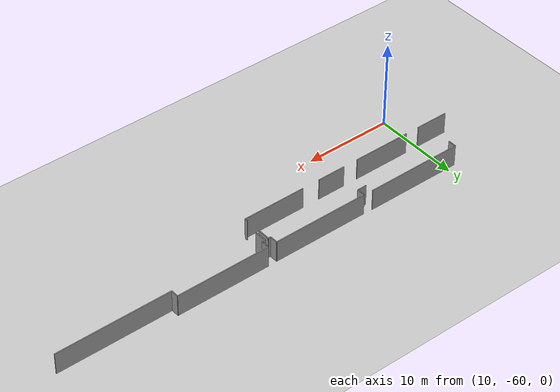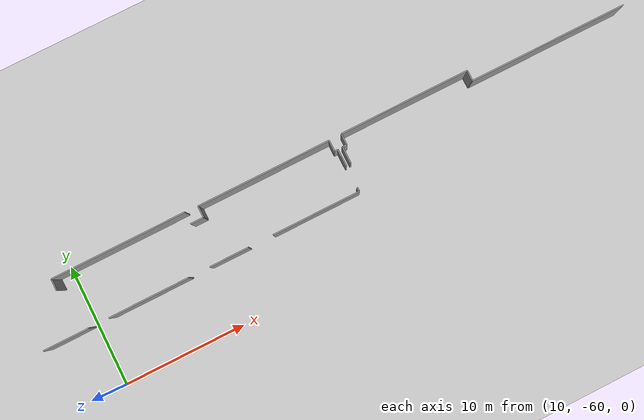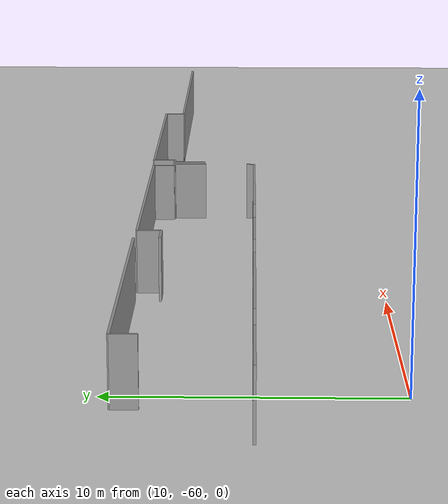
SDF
<sdf version="1.6">
 <world name="default">
  <model name="ground_plane">
   <static>1</static>
   <link name="link">
    <collision name="collision">
     <geometry><plane><normal>0 0 1</normal><size>100 100</size></plane></geometry>
     <surface><friction><ode><mu>100</mu><mu2>50</mu2></ode></friction></surface>
    </collision>
    <visual name="visual">
     <cast_shadows>0</cast_shadows>
     <geometry><plane><normal>0 0 1</normal><size>100 100</size></plane></geometry>
     <material>
      <script><uri>file://media/materials/scripts/gazebo.material</uri><name>Gazebo/Grey</name></script>
     </material>
    </visual>
   </link>
  </model>
  <model name="50036893">
   <static>1</static>
   <link name="Wall_163">
    <collision name="Wall_163_Collision">
     <geometry><box><size>0.924947849629 0.1 2.5</size></box></geometry>
     <pose>0.462473924815 0 1.25 0 0 0</pose>
    </collision>
    <visual name="Wall_163_Visual">
     <pose>0.462473924815 0 1.25 0 0 0</pose>
     <geometry><box><size>0.924947849629 0.1 2.5</size></box></geometry>
     <material>
      <script><uri>file://media/materials/scripts/gazebo.material</uri><name>Gazebo/Grey</name></script>
      <ambient>1 1 1 1</ambient>
     </material>
    </visual>
    <pose>83.1775902407 -119.300772903 0 0 0 1.57079632679</pose>
   </link>
   <link name="Wall_164">
    <collision name="Wall_164_Collision">
     <geometry><box><size>11.0729978379 0.1 2.5</size></box></geometry>
     <pose>5.53649891895 0 1.25 0 0 0</pose>
    </collision>
    <visual name="Wall_164_Visual">
     <pose>5.53649891895 0 1.25 0 0 0</pose>
     <geometry><box><size>11.0729978379 0.1 2.5</size></box></geometry>
     <material>
      <script><uri>file://media/materials/scripts/gazebo.material</uri><name>Gazebo/Grey</name></script>
      <ambient>1 1 1 1</ambient>
     </material>
    </visual>
    <pose>83.1775902407 -118.375825054 0 0 0 0.0</pose>
   </link>
   <link name="Wall_166">
    <collision name="Wall_166_Collision">
     <geometry><box><size>1.07788000025 0.1 2.5</size></box></geometry>
     <pose>0.538940000127 0 1.25 0 0 0</pose>
    </collision>
    <visual name="Wall_166_Visual">
     <pose>0.538940000127 0 1.25 0 0 0</pose>
     <geometry><box><size>1.07788000025 0.1 2.5</size></box></geometry>
     <material>
      <script><uri>file://media/materials/scripts/gazebo.material</uri><name>Gazebo/Grey</name></script>
      <ambient>1 1 1 1</ambient>
     </material>
    </visual>
    <pose>94.2505880786 -119.363416753 0 0 0 0.0</pose>
   </link>
   <link name="Wall_167">
    <collision name="Wall_167_Collision">
     <geometry><box><size>0.936867934338 0.1 2.5</size></box></geometry>
     <pose>0.468433967169 0 1.25 0 0 0</pose>
    </collision>
    <visual name="Wall_167_Visual">
     <pose>0.468433967169 0 1.25 0 0 0</pose>
     <geometry><box><size>0.936867934338 0.1 2.5</size></box></geometry>
     <material>
      <script><uri>file://media/materials/scripts/gazebo.material</uri><name>Gazebo/Grey</name></script>
      <ambient>1 1 1 1</ambient>
     </material>
    </visual>
    <pose>95.3284680789 -119.363416753 0 0 0 1.57079632679</pose>
   </link>
   <link name="Wall_168">
    <collision name="Wall_168_Collision">
     <geometry><box><size>11.0273464497 0.1 2.5</size></box></geometry>
     <pose>5.51367322483 0 1.25 0 0 0</pose>
    </collision>
    <visual name="Wall_168_Visual">
     <pose>5.51367322483 0 1.25 0 0 0</pose>
     <geometry><box><size>11.0273464497 0.1 2.5</size></box></geometry>
     <material>
      <script><uri>file://media/materials/scripts/gazebo.material</uri><name>Gazebo/Grey</name></script>
      <ambient>1 1 1 1</ambient>
     </material>
    </visual>
    <pose>95.3284680789 -118.426548818 0 0 0 0.0</pose>
   </link>
   <link name="Wall_169">
    <collision name="Wall_169_Collision">
     <geometry><box><size>0.912013289626 0.1 2.5</size></box></geometry>
     <pose>0.456006644813 0 1.25 0 0 0</pose>
    </collision>
    <visual name="Wall_169_Visual">
     <pose>0.456006644813 0 1.25 0 0 0</pose>
     <geometry><box><size>0.912013289626 0.1 2.5</size></box></geometry>
     <material>
      <script><uri>file://media/materials/scripts/gazebo.material</uri><name>Gazebo/Grey</name></script>
      <ambient>1 1 1 1</ambient>
     </material>
    </visual>
    <pose>106.355814529 -118.426548818 0 0 0 -1.57079632679</pose>
   </link>
   <link name="Wall_170">
    <collision name="Wall_170_Collision">
     <geometry><box><size>0.289125458892 0.1 2.5</size></box></geometry>
     <pose>0.144562729446 0 1.25 0 0 0</pose>
    </collision>
    <visual name="Wall_170_Visual">
     <pose>0.144562729446 0 1.25 0 0 0</pose>
     <geometry><box><size>0.289125458892 0.1 2.5</size></box></geometry>
     <material>
      <script><uri>file://media/materials/scripts/gazebo.material</uri><name>Gazebo/Grey</name></script>
      <ambient>1 1 1 1</ambient>
     </material>
    </visual>
    <pose>106.355814529 -119.338562108 0 0 0 0.0</pose>
   </link>
   <link name="Wall_171">
    <collision name="Wall_171_Collision">
     <geometry><box><size>1.41772922386 0.1 2.5</size></box></geometry>
     <pose>0.708864611931 0 1.25 0 0 0</pose>
    </collision>
    <visual name="Wall_171_Visual">
     <pose>0.708864611931 0 1.25 0 0 0</pose>
     <geometry><box><size>1.41772922386 0.1 2.5</size></box></geometry>
     <material>
      <script><uri>file://media/materials/scripts/gazebo.material</uri><name>Gazebo/Grey</name></script>
      <ambient>1 1 1 1</ambient>
     </material>
    </visual>
    <pose>106.644939987 -119.338562108 0 0 0 -1.57079632679</pose>
   </link>
   <link name="Wall_172">
    <collision name="Wall_172_Collision">
     <geometry><box><size>0.338834748315 0.1 2.5</size></box></geometry>
     <pose>0.169417374158 0 1.25 0 0 0</pose>
    </collision>
    <visual name="Wall_172_Visual">
     <pose>0.169417374158 0 1.25 0 0 0</pose>
     <geometry><box><size>0.338834748315 0.1 2.5</size></box></geometry>
     <material>
      <script><uri>file://media/materials/scripts/gazebo.material</uri><name>Gazebo/Grey</name></script>
      <ambient>1 1 1 1</ambient>
     </material>
    </visual>
    <pose>106.644939987 -122.575499154 0 0 0 -1.57079632679</pose>
   </link>
   <link name="Wall_173">
    <collision name="Wall_173_Collision">
     <geometry><box><size>7.25349835465 0.1 2.5</size></box></geometry>
     <pose>3.62674917732 0 1.25 0 0 0</pose>
    </collision>
    <visual name="Wall_173_Visual">
     <pose>3.62674917732 0 1.25 0 0 0</pose>
     <geometry><box><size>7.25349835465 0.1 2.5</size></box></geometry>
     <material>
      <script><uri>file://media/materials/scripts/gazebo.material</uri><name>Gazebo/Grey</name></script>
      <ambient>1 1 1 1</ambient>
     </material>
    </visual>
    <pose>106.644939987 -122.914333902 0 0 0 3.14159265359</pose>
   </link>
   <link name="Wall_174">
    <collision name="Wall_174_Collision">
     <geometry><box><size>3.24124856547 0.1 2.5</size></box></geometry>
     <pose>1.62062428273 0 1.25 0 0 0</pose>
    </collision>
    <visual name="Wall_174_Visual">
     <pose>1.62062428273 0 1.25 0 0 0</pose>
     <geometry><box><size>3.24124856547 0.1 2.5</size></box></geometry>
     <material>
      <script><uri>file://media/materials/scripts/gazebo.material</uri><name>Gazebo/Grey</name></script>
      <ambient>1 1 1 1</ambient>
     </material>
    </visual>
    <pose>97.3422015382 -122.914333902 0 0 0 3.14159265359</pose>
   </link>
   <link name="Wall_175">
    <collision name="Wall_175_Collision">
     <geometry><box><size>6.61691510744 0.1 2.5</size></box></geometry>
     <pose>3.30845755372 0 1.25 0 0 0</pose>
    </collision>
    <visual name="Wall_175_Visual">
     <pose>3.30845755372 0 1.25 0 0 0</pose>
     <geometry><box><size>6.61691510744 0.1 2.5</size></box></geometry>
     <material>
      <script><uri>file://media/materials/scripts/gazebo.material</uri><name>Gazebo/Grey</name></script>
      <ambient>1 1 1 1</ambient>
     </material>
    </visual>
    <pose>92.3687364076 -122.914333902 0 0 0 3.14159265359</pose>
   </link>
   <link name="Wall_176">
    <collision name="Wall_176_Collision">
     <geometry><box><size>3.72566051852 0.1 2.5</size></box></geometry>
     <pose>1.86283025926 0 1.25 0 0 0</pose>
    </collision>
    <visual name="Wall_176_Visual">
     <pose>1.86283025926 0 1.25 0 0 0</pose>
     <geometry><box><size>3.72566051852 0.1 2.5</size></box></geometry>
     <material>
      <script><uri>file://media/materials/scripts/gazebo.material</uri><name>Gazebo/Grey</name></script>
      <ambient>1 1 1 1</ambient>
     </material>
    </visual>
    <pose>84.1210522645 -122.914333902 0 0 0 3.14159265359</pose>
   </link>
   <link name="Wall_193">
    <collision name="Wall_193_Collision">
     <geometry><box><size>10.7762638143 0.1 2.5</size></box></geometry>
     <pose>5.38813190715 0 1.25 0 0 0</pose>
    </collision>
    <visual name="Wall_193_Visual">
     <pose>5.38813190715 0 1.25 0 0 0</pose>
     <geometry><box><size>10.7762638143 0.1 2.5</size></box></geometry>
     <material>
      <script><uri>file://media/materials/scripts/gazebo.material</uri><name>Gazebo/Grey</name></script>
      <ambient>1 1 1 1</ambient>
     </material>
    </visual>
    <pose>107.421013588 -118.386477044 0 0 0 0.0</pose>
   </link>
   <link name="Wall_194">
    <collision name="Wall_194_Collision">
     <geometry><box><size>0.882086268443 0.1 2.5</size></box></geometry>
     <pose>0.441043134221 0 1.25 0 0 0</pose>
    </collision>
    <visual name="Wall_194_Visual">
     <pose>0.441043134221 0 1.25 0 0 0</pose>
     <geometry><box><size>0.882086268443 0.1 2.5</size></box></geometry>
     <material>
      <script><uri>file://media/materials/scripts/gazebo.material</uri><name>Gazebo/Grey</name></script>
      <ambient>1 1 1 1</ambient>
     </material>
    </visual>
    <pose>118.197277402 -118.386477044 0 0 0 -1.57079632679</pose>
   </link>
   <link name="Wall_195">
    <collision name="Wall_195_Collision">
     <geometry><box><size>13.1044846148 0.1 2.5</size></box></geometry>
     <pose>6.55224230742 0 1.25 0 0 0</pose>
    </collision>
    <visual name="Wall_195_Visual">
     <pose>6.55224230742 0 1.25 0 0 0</pose>
     <geometry><box><size>13.1044846148 0.1 2.5</size></box></geometry>
     <material>
      <script><uri>file://media/materials/scripts/gazebo.material</uri><name>Gazebo/Grey</name></script>
      <ambient>1 1 1 1</ambient>
     </material>
    </visual>
    <pose>118.197277402 -119.268563313 0 0 0 0.0</pose>
   </link>
   <link name="Wall_206">
    <collision name="Wall_206_Collision">
     <geometry><box><size>1.37385316738 0.1 2.5</size></box></geometry>
     <pose>0.686926583691 0 1.25 0 0 0</pose>
    </collision>
    <visual name="Wall_206_Visual">
     <pose>0.686926583691 0 1.25 0 0 0</pose>
     <geometry><box><size>1.37385316738 0.1 2.5</size></box></geometry>
     <material>
      <script><uri>file://media/materials/scripts/gazebo.material</uri><name>Gazebo/Grey</name></script>
      <ambient>1 1 1 1</ambient>
     </material>
    </visual>
    <pose>107.04312154 -120.704045854 0 0 0 1.57079632679</pose>
   </link>
   <link name="Wall_207">
    <collision name="Wall_207_Collision">
     <geometry><box><size>0.362674917732 0.1 2.5</size></box></geometry>
     <pose>0.181337458866 0 1.25 0 0 0</pose>
    </collision>
    <visual name="Wall_207_Visual">
     <pose>0.181337458866 0 1.25 0 0 0</pose>
     <geometry><box><size>0.362674917732 0.1 2.5</size></box></geometry>
     <material>
      <script><uri>file://media/materials/scripts/gazebo.material</uri><name>Gazebo/Grey</name></script>
      <ambient>1 1 1 1</ambient>
     </material>
    </visual>
    <pose>107.04312154 -119.330192687 0 0 0 0.0</pose>
   </link>
   <link name="Wall_208">
    <collision name="Wall_208_Collision">
     <geometry><box><size>0.943838320407 0.1 2.5</size></box></geometry>
     <pose>0.471919160203 0 1.25 0 0 0</pose>
    </collision>
    <visual name="Wall_208_Visual">
     <pose>0.471919160203 0 1.25 0 0 0</pose>
     <geometry><box><size>0.943838320407 0.1 2.5</size></box></geometry>
     <material>
      <script><uri>file://media/materials/scripts/gazebo.material</uri><name>Gazebo/Grey</name></script>
      <ambient>1 1 1 1</ambient>
     </material>
    </visual>
    <pose>107.405796458 -119.330192687 0 0 0 1.55467302642</pose>
   </link>
   <pose>-74.25 67.8925905261 0 0 0 0</pose>
  </model>
 </world>
</sdf>
